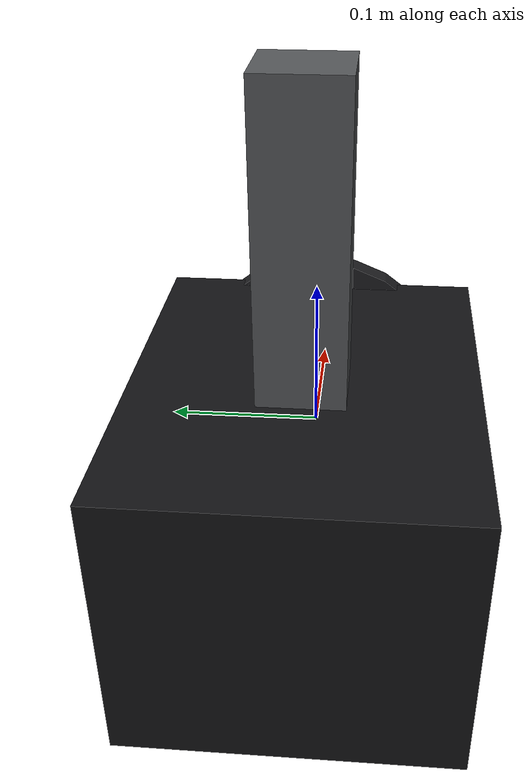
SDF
<?xml version="1.0" encoding="UTF-8"?>
<sdf version="1.9">
  <model name="vicon_vantage_visual">
    <static>true</static>
    <link name="camera_body">
      <visual name="housing">
        <pose>-0.09 0 0 0 0 0</pose>
        <geometry><box><size>0.26 0.20 0.17</size></box></geometry>
        <material><ambient>0.03 0.03 0.035 1</ambient><diffuse>0.07 0.07 0.08 1</diffuse><specular>0.20 0.20 0.20 1</specular></material>
      </visual>
      <visual name="strobe_bezel">
        <pose>0.038 0 0.015 0 1.57079632679 0</pose>
        <geometry><cylinder><radius>0.088</radius><length>0.014</length></cylinder></geometry>
        <material><ambient>0.05 0.05 0.055 1</ambient><diffuse>0.11 0.11 0.12 1</diffuse></material>
      </visual>
      <visual name="lens">
        <pose>0.047 0 0.015 0 1.57079632679 0</pose>
        <geometry><cylinder><radius>0.062</radius><length>0.014</length></cylinder></geometry>
        <material><ambient>0.08 0.30 0.55 1</ambient><diffuse>0.10 0.45 0.80 1</diffuse><specular>0.45 0.45 0.45 1</specular></material>
      </visual>
      <visual name="rail_bracket">
        <pose>-0.10 0 0.17 0 0 0</pose>
        <geometry><box><size>0.05 0.05 0.18</size></box></geometry>
        <material><ambient>0.20 0.21 0.22 1</ambient><diffuse>0.32 0.33 0.34 1</diffuse></material>
      </visual>
    </link>
  </model>
</sdf>
